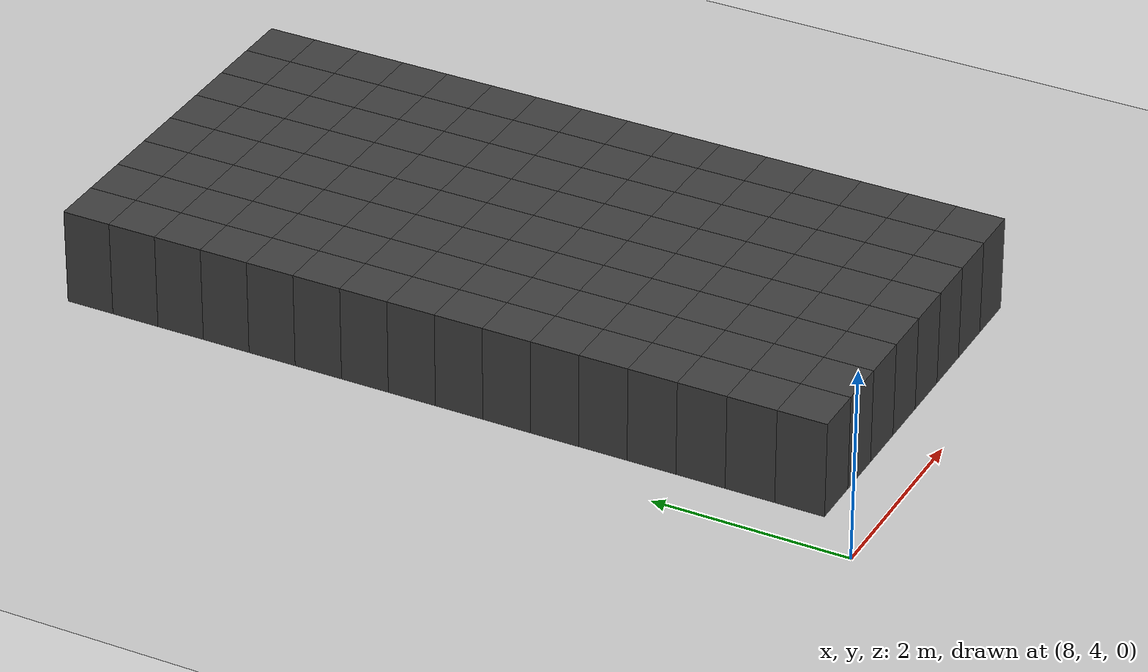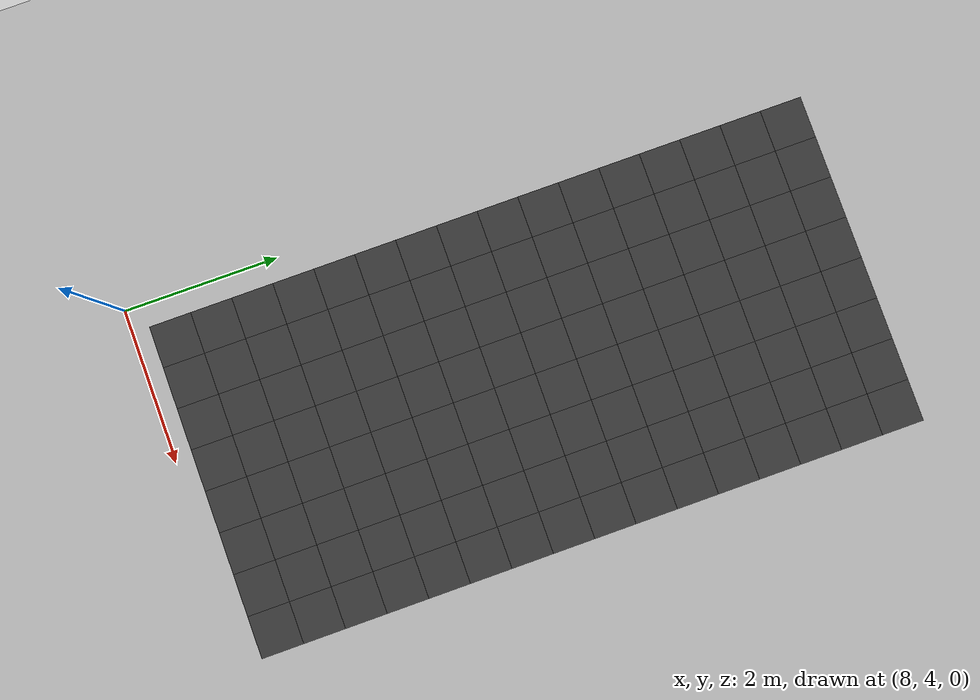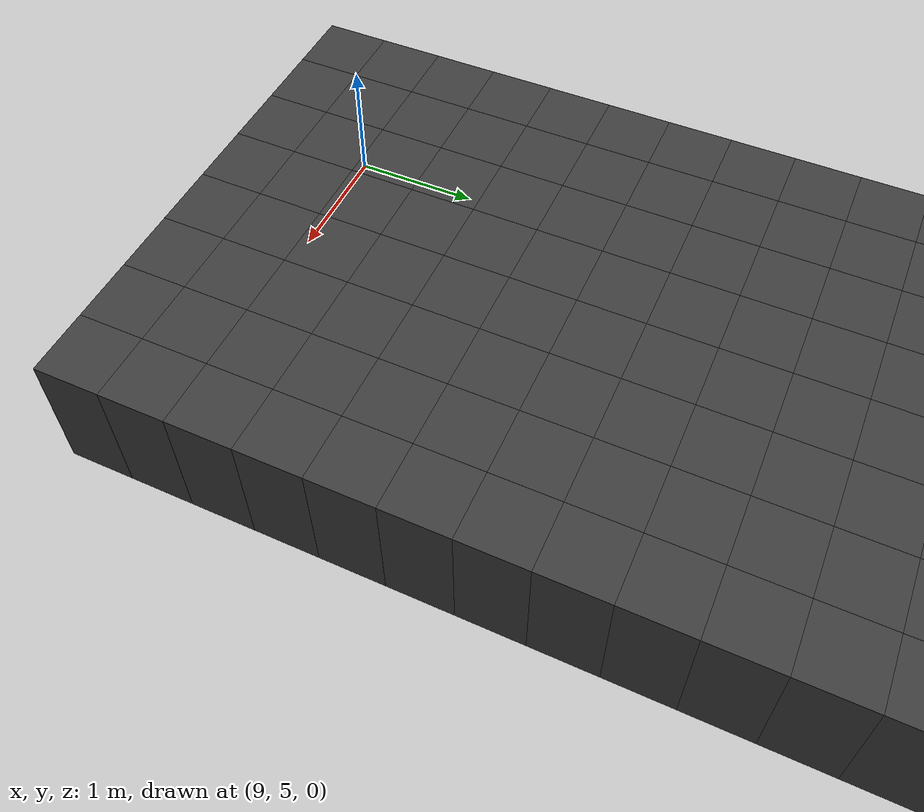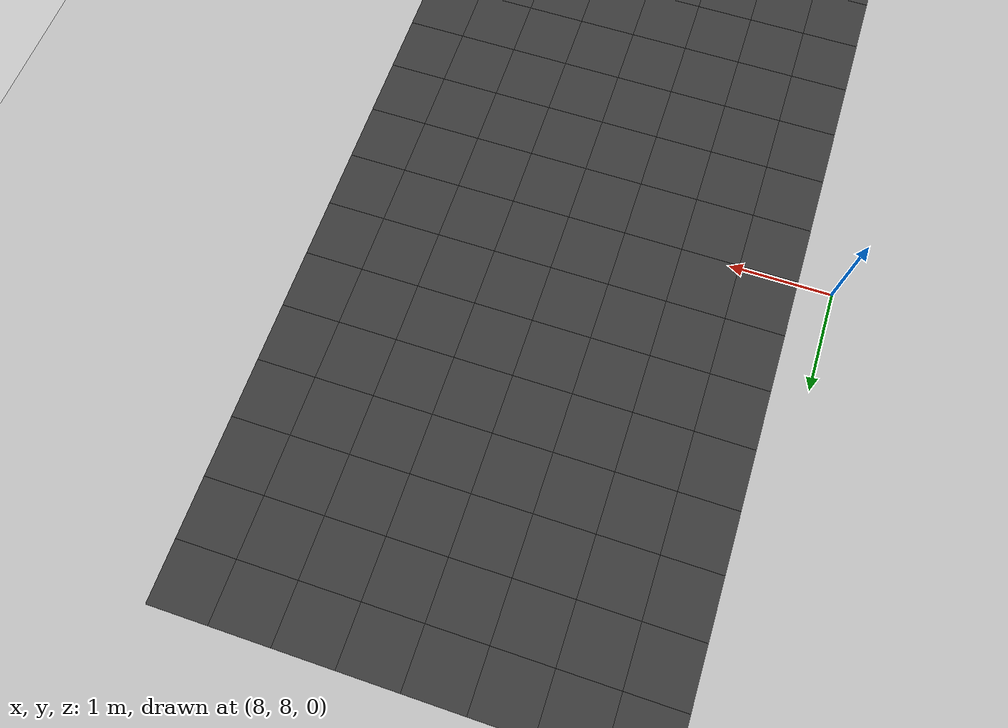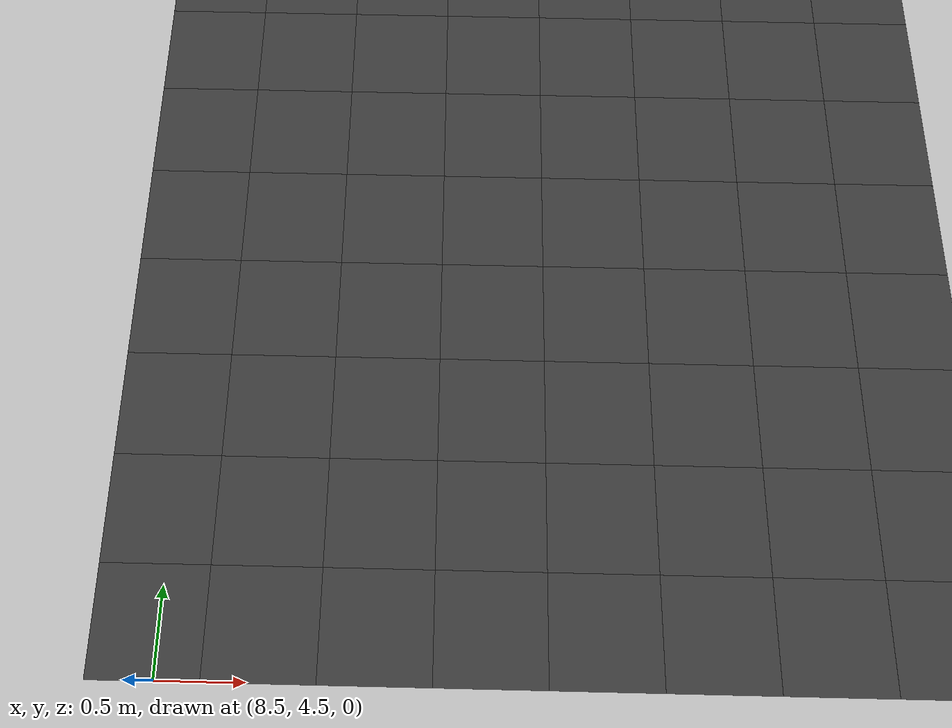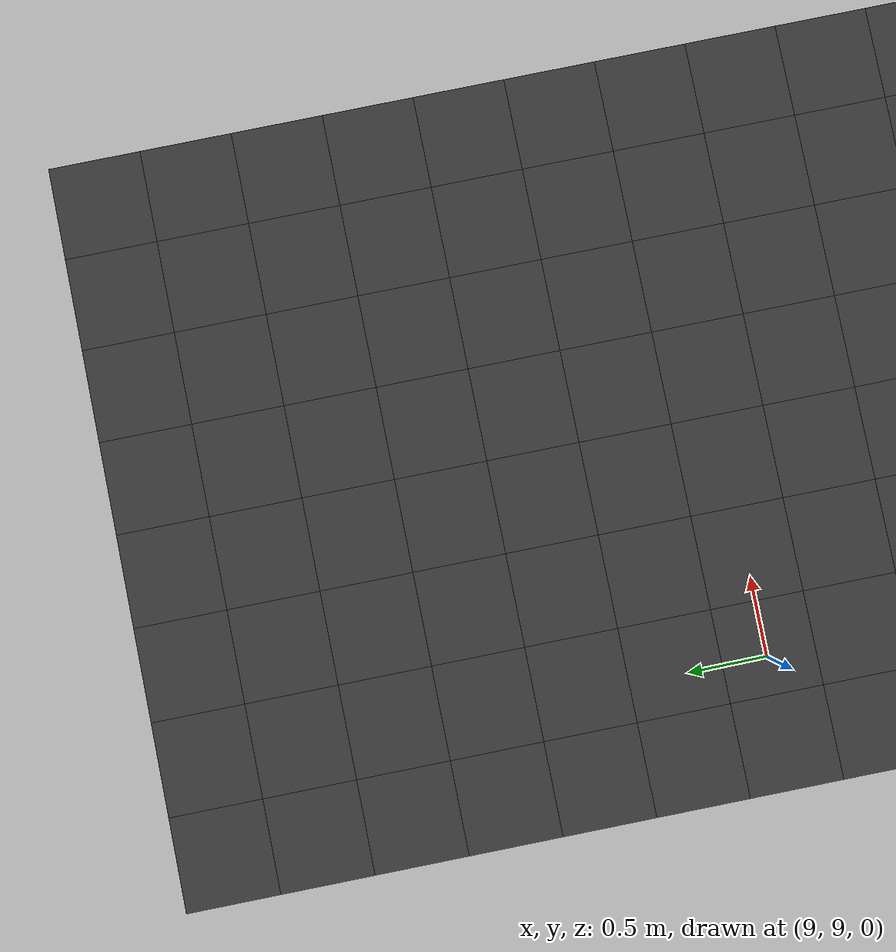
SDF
<sdf version="1.7">
 <world name="map_11515">
  <model name="ground_plane">
   <static>true</static>
   <link name="link">
    <collision name="collision">
     <geometry><plane><normal>0 0 1</normal><size>200 200</size></plane></geometry>
    </collision>
    <visual name="visual">
     <geometry><plane><normal>0 0 1</normal><size>200 200</size></plane></geometry>
     <material><ambient>0.8 0.8 0.8 1</ambient><diffuse>0.8 0.8 0.8 1</diffuse></material>
    </visual>
   </link>
  </model>
  <model name="maze_environment">
   <static>true</static>
   <link name="wall_42">
    <pose>8.750 12.250 0.500 0 0 0</pose>
    <collision name="col"><geometry><box><size>0.5 0.5 1.0</size></box></geometry></collision>
    <visual name="vis">
     <geometry><box><size>0.5 0.5 1.0</size></box></geometry>
     <material><ambient>0.15 0.15 0.15 1</ambient><diffuse>0.25 0.25 0.25 1</diffuse></material>
    </visual>
   </link>
   <link name="wall_43">
    <pose>9.250 12.250 0.500 0 0 0</pose>
    <collision name="col"><geometry><box><size>0.5 0.5 1.0</size></box></geometry></collision>
    <visual name="vis">
     <geometry><box><size>0.5 0.5 1.0</size></box></geometry>
     <material><ambient>0.15 0.15 0.15 1</ambient><diffuse>0.25 0.25 0.25 1</diffuse></material>
    </visual>
   </link>
   <link name="wall_44">
    <pose>9.750 12.250 0.500 0 0 0</pose>
    <collision name="col"><geometry><box><size>0.5 0.5 1.0</size></box></geometry></collision>
    <visual name="vis">
     <geometry><box><size>0.5 0.5 1.0</size></box></geometry>
     <material><ambient>0.15 0.15 0.15 1</ambient><diffuse>0.25 0.25 0.25 1</diffuse></material>
    </visual>
   </link>
   <link name="wall_45">
    <pose>10.250 12.250 0.500 0 0 0</pose>
    <collision name="col"><geometry><box><size>0.5 0.5 1.0</size></box></geometry></collision>
    <visual name="vis">
     <geometry><box><size>0.5 0.5 1.0</size></box></geometry>
     <material><ambient>0.15 0.15 0.15 1</ambient><diffuse>0.25 0.25 0.25 1</diffuse></material>
    </visual>
   </link>
   <link name="wall_46">
    <pose>10.750 12.250 0.500 0 0 0</pose>
    <collision name="col"><geometry><box><size>0.5 0.5 1.0</size></box></geometry></collision>
    <visual name="vis">
     <geometry><box><size>0.5 0.5 1.0</size></box></geometry>
     <material><ambient>0.15 0.15 0.15 1</ambient><diffuse>0.25 0.25 0.25 1</diffuse></material>
    </visual>
   </link>
   <link name="wall_47">
    <pose>11.250 12.250 0.500 0 0 0</pose>
    <collision name="col"><geometry><box><size>0.5 0.5 1.0</size></box></geometry></collision>
    <visual name="vis">
     <geometry><box><size>0.5 0.5 1.0</size></box></geometry>
     <material><ambient>0.15 0.15 0.15 1</ambient><diffuse>0.25 0.25 0.25 1</diffuse></material>
    </visual>
   </link>
   <link name="wall_48">
    <pose>11.750 12.250 0.500 0 0 0</pose>
    <collision name="col"><geometry><box><size>0.5 0.5 1.0</size></box></geometry></collision>
    <visual name="vis">
     <geometry><box><size>0.5 0.5 1.0</size></box></geometry>
     <material><ambient>0.15 0.15 0.15 1</ambient><diffuse>0.25 0.25 0.25 1</diffuse></material>
    </visual>
   </link>
   <link name="wall_49">
    <pose>12.250 12.250 0.500 0 0 0</pose>
    <collision name="col"><geometry><box><size>0.5 0.5 1.0</size></box></geometry></collision>
    <visual name="vis">
     <geometry><box><size>0.5 0.5 1.0</size></box></geometry>
     <material><ambient>0.15 0.15 0.15 1</ambient><diffuse>0.25 0.25 0.25 1</diffuse></material>
    </visual>
   </link>
   <link name="wall_89">
    <pose>8.750 11.750 0.500 0 0 0</pose>
    <collision name="col"><geometry><box><size>0.5 0.5 1.0</size></box></geometry></collision>
    <visual name="vis">
     <geometry><box><size>0.5 0.5 1.0</size></box></geometry>
     <material><ambient>0.15 0.15 0.15 1</ambient><diffuse>0.25 0.25 0.25 1</diffuse></material>
    </visual>
   </link>
   <link name="wall_90">
    <pose>9.250 11.750 0.500 0 0 0</pose>
    <collision name="col"><geometry><box><size>0.5 0.5 1.0</size></box></geometry></collision>
    <visual name="vis">
     <geometry><box><size>0.5 0.5 1.0</size></box></geometry>
     <material><ambient>0.15 0.15 0.15 1</ambient><diffuse>0.25 0.25 0.25 1</diffuse></material>
    </visual>
   </link>
   <link name="wall_91">
    <pose>9.750 11.750 0.500 0 0 0</pose>
    <collision name="col"><geometry><box><size>0.5 0.5 1.0</size></box></geometry></collision>
    <visual name="vis">
     <geometry><box><size>0.5 0.5 1.0</size></box></geometry>
     <material><ambient>0.15 0.15 0.15 1</ambient><diffuse>0.25 0.25 0.25 1</diffuse></material>
    </visual>
   </link>
   <link name="wall_92">
    <pose>10.250 11.750 0.500 0 0 0</pose>
    <collision name="col"><geometry><box><size>0.5 0.5 1.0</size></box></geometry></collision>
    <visual name="vis">
     <geometry><box><size>0.5 0.5 1.0</size></box></geometry>
     <material><ambient>0.15 0.15 0.15 1</ambient><diffuse>0.25 0.25 0.25 1</diffuse></material>
    </visual>
   </link>
   <link name="wall_93">
    <pose>10.750 11.750 0.500 0 0 0</pose>
    <collision name="col"><geometry><box><size>0.5 0.5 1.0</size></box></geometry></collision>
    <visual name="vis">
     <geometry><box><size>0.5 0.5 1.0</size></box></geometry>
     <material><ambient>0.15 0.15 0.15 1</ambient><diffuse>0.25 0.25 0.25 1</diffuse></material>
    </visual>
   </link>
   <link name="wall_94">
    <pose>11.250 11.750 0.500 0 0 0</pose>
    <collision name="col"><geometry><box><size>0.5 0.5 1.0</size></box></geometry></collision>
    <visual name="vis">
     <geometry><box><size>0.5 0.5 1.0</size></box></geometry>
     <material><ambient>0.15 0.15 0.15 1</ambient><diffuse>0.25 0.25 0.25 1</diffuse></material>
    </visual>
   </link>
   <link name="wall_95">
    <pose>11.750 11.750 0.500 0 0 0</pose>
    <collision name="col"><geometry><box><size>0.5 0.5 1.0</size></box></geometry></collision>
    <visual name="vis">
     <geometry><box><size>0.5 0.5 1.0</size></box></geometry>
     <material><ambient>0.15 0.15 0.15 1</ambient><diffuse>0.25 0.25 0.25 1</diffuse></material>
    </visual>
   </link>
   <link name="wall_96">
    <pose>12.250 11.750 0.500 0 0 0</pose>
    <collision name="col"><geometry><box><size>0.5 0.5 1.0</size></box></geometry></collision>
    <visual name="vis">
     <geometry><box><size>0.5 0.5 1.0</size></box></geometry>
     <material><ambient>0.15 0.15 0.15 1</ambient><diffuse>0.25 0.25 0.25 1</diffuse></material>
    </visual>
   </link>
   <link name="wall_136">
    <pose>8.750 11.250 0.500 0 0 0</pose>
    <collision name="col"><geometry><box><size>0.5 0.5 1.0</size></box></geometry></collision>
    <visual name="vis">
     <geometry><box><size>0.5 0.5 1.0</size></box></geometry>
     <material><ambient>0.15 0.15 0.15 1</ambient><diffuse>0.25 0.25 0.25 1</diffuse></material>
    </visual>
   </link>
   <link name="wall_137">
    <pose>9.250 11.250 0.500 0 0 0</pose>
    <collision name="col"><geometry><box><size>0.5 0.5 1.0</size></box></geometry></collision>
    <visual name="vis">
     <geometry><box><size>0.5 0.5 1.0</size></box></geometry>
     <material><ambient>0.15 0.15 0.15 1</ambient><diffuse>0.25 0.25 0.25 1</diffuse></material>
    </visual>
   </link>
   <link name="wall_138">
    <pose>9.750 11.250 0.500 0 0 0</pose>
    <collision name="col"><geometry><box><size>0.5 0.5 1.0</size></box></geometry></collision>
    <visual name="vis">
     <geometry><box><size>0.5 0.5 1.0</size></box></geometry>
     <material><ambient>0.15 0.15 0.15 1</ambient><diffuse>0.25 0.25 0.25 1</diffuse></material>
    </visual>
   </link>
   <link name="wall_139">
    <pose>10.250 11.250 0.500 0 0 0</pose>
    <collision name="col"><geometry><box><size>0.5 0.5 1.0</size></box></geometry></collision>
    <visual name="vis">
     <geometry><box><size>0.5 0.5 1.0</size></box></geometry>
     <material><ambient>0.15 0.15 0.15 1</ambient><diffuse>0.25 0.25 0.25 1</diffuse></material>
    </visual>
   </link>
   <link name="wall_140">
    <pose>10.750 11.250 0.500 0 0 0</pose>
    <collision name="col"><geometry><box><size>0.5 0.5 1.0</size></box></geometry></collision>
    <visual name="vis">
     <geometry><box><size>0.5 0.5 1.0</size></box></geometry>
     <material><ambient>0.15 0.15 0.15 1</ambient><diffuse>0.25 0.25 0.25 1</diffuse></material>
    </visual>
   </link>
   <link name="wall_141">
    <pose>11.250 11.250 0.500 0 0 0</pose>
    <collision name="col"><geometry><box><size>0.5 0.5 1.0</size></box></geometry></collision>
    <visual name="vis">
     <geometry><box><size>0.5 0.5 1.0</size></box></geometry>
     <material><ambient>0.15 0.15 0.15 1</ambient><diffuse>0.25 0.25 0.25 1</diffuse></material>
    </visual>
   </link>
   <link name="wall_142">
    <pose>11.750 11.250 0.500 0 0 0</pose>
    <collision name="col"><geometry><box><size>0.5 0.5 1.0</size></box></geometry></collision>
    <visual name="vis">
     <geometry><box><size>0.5 0.5 1.0</size></box></geometry>
     <material><ambient>0.15 0.15 0.15 1</ambient><diffuse>0.25 0.25 0.25 1</diffuse></material>
    </visual>
   </link>
   <link name="wall_143">
    <pose>12.250 11.250 0.500 0 0 0</pose>
    <collision name="col"><geometry><box><size>0.5 0.5 1.0</size></box></geometry></collision>
    <visual name="vis">
     <geometry><box><size>0.5 0.5 1.0</size></box></geometry>
     <material><ambient>0.15 0.15 0.15 1</ambient><diffuse>0.25 0.25 0.25 1</diffuse></material>
    </visual>
   </link>
   <link name="wall_183">
    <pose>8.750 10.750 0.500 0 0 0</pose>
    <collision name="col"><geometry><box><size>0.5 0.5 1.0</size></box></geometry></collision>
    <visual name="vis">
     <geometry><box><size>0.5 0.5 1.0</size></box></geometry>
     <material><ambient>0.15 0.15 0.15 1</ambient><diffuse>0.25 0.25 0.25 1</diffuse></material>
    </visual>
   </link>
   <link name="wall_184">
    <pose>9.250 10.750 0.500 0 0 0</pose>
    <collision name="col"><geometry><box><size>0.5 0.5 1.0</size></box></geometry></collision>
    <visual name="vis">
     <geometry><box><size>0.5 0.5 1.0</size></box></geometry>
     <material><ambient>0.15 0.15 0.15 1</ambient><diffuse>0.25 0.25 0.25 1</diffuse></material>
    </visual>
   </link>
   <link name="wall_185">
    <pose>9.750 10.750 0.500 0 0 0</pose>
    <collision name="col"><geometry><box><size>0.5 0.5 1.0</size></box></geometry></collision>
    <visual name="vis">
     <geometry><box><size>0.5 0.5 1.0</size></box></geometry>
     <material><ambient>0.15 0.15 0.15 1</ambient><diffuse>0.25 0.25 0.25 1</diffuse></material>
    </visual>
   </link>
   <link name="wall_186">
    <pose>10.250 10.750 0.500 0 0 0</pose>
    <collision name="col"><geometry><box><size>0.5 0.5 1.0</size></box></geometry></collision>
    <visual name="vis">
     <geometry><box><size>0.5 0.5 1.0</size></box></geometry>
     <material><ambient>0.15 0.15 0.15 1</ambient><diffuse>0.25 0.25 0.25 1</diffuse></material>
    </visual>
   </link>
   <link name="wall_187">
    <pose>10.750 10.750 0.500 0 0 0</pose>
    <collision name="col"><geometry><box><size>0.5 0.5 1.0</size></box></geometry></collision>
    <visual name="vis">
     <geometry><box><size>0.5 0.5 1.0</size></box></geometry>
     <material><ambient>0.15 0.15 0.15 1</ambient><diffuse>0.25 0.25 0.25 1</diffuse></material>
    </visual>
   </link>
   <link name="wall_188">
    <pose>11.250 10.750 0.500 0 0 0</pose>
    <collision name="col"><geometry><box><size>0.5 0.5 1.0</size></box></geometry></collision>
    <visual name="vis">
     <geometry><box><size>0.5 0.5 1.0</size></box></geometry>
     <material><ambient>0.15 0.15 0.15 1</ambient><diffuse>0.25 0.25 0.25 1</diffuse></material>
    </visual>
   </link>
   <link name="wall_189">
    <pose>11.750 10.750 0.500 0 0 0</pose>
    <collision name="col"><geometry><box><size>0.5 0.5 1.0</size></box></geometry></collision>
    <visual name="vis">
     <geometry><box><size>0.5 0.5 1.0</size></box></geometry>
     <material><ambient>0.15 0.15 0.15 1</ambient><diffuse>0.25 0.25 0.25 1</diffuse></material>
    </visual>
   </link>
   <link name="wall_190">
    <pose>12.250 10.750 0.500 0 0 0</pose>
    <collision name="col"><geometry><box><size>0.5 0.5 1.0</size></box></geometry></collision>
    <visual name="vis">
     <geometry><box><size>0.5 0.5 1.0</size></box></geometry>
     <material><ambient>0.15 0.15 0.15 1</ambient><diffuse>0.25 0.25 0.25 1</diffuse></material>
    </visual>
   </link>
   <link name="wall_232">
    <pose>8.750 10.250 0.500 0 0 0</pose>
    <collision name="col"><geometry><box><size>0.5 0.5 1.0</size></box></geometry></collision>
    <visual name="vis">
     <geometry><box><size>0.5 0.5 1.0</size></box></geometry>
     <material><ambient>0.15 0.15 0.15 1</ambient><diffuse>0.25 0.25 0.25 1</diffuse></material>
    </visual>
   </link>
   <link name="wall_233">
    <pose>9.250 10.250 0.500 0 0 0</pose>
    <collision name="col"><geometry><box><size>0.5 0.5 1.0</size></box></geometry></collision>
    <visual name="vis">
     <geometry><box><size>0.5 0.5 1.0</size></box></geometry>
     <material><ambient>0.15 0.15 0.15 1</ambient><diffuse>0.25 0.25 0.25 1</diffuse></material>
    </visual>
   </link>
   <link name="wall_234">
    <pose>9.750 10.250 0.500 0 0 0</pose>
    <collision name="col"><geometry><box><size>0.5 0.5 1.0</size></box></geometry></collision>
    <visual name="vis">
     <geometry><box><size>0.5 0.5 1.0</size></box></geometry>
     <material><ambient>0.15 0.15 0.15 1</ambient><diffuse>0.25 0.25 0.25 1</diffuse></material>
    </visual>
   </link>
   <link name="wall_235">
    <pose>10.250 10.250 0.500 0 0 0</pose>
    <collision name="col"><geometry><box><size>0.5 0.5 1.0</size></box></geometry></collision>
    <visual name="vis">
     <geometry><box><size>0.5 0.5 1.0</size></box></geometry>
     <material><ambient>0.15 0.15 0.15 1</ambient><diffuse>0.25 0.25 0.25 1</diffuse></material>
    </visual>
   </link>
   <link name="wall_236">
    <pose>10.750 10.250 0.500 0 0 0</pose>
    <collision name="col"><geometry><box><size>0.5 0.5 1.0</size></box></geometry></collision>
    <visual name="vis">
     <geometry><box><size>0.5 0.5 1.0</size></box></geometry>
     <material><ambient>0.15 0.15 0.15 1</ambient><diffuse>0.25 0.25 0.25 1</diffuse></material>
    </visual>
   </link>
   <link name="wall_237">
    <pose>11.250 10.250 0.500 0 0 0</pose>
    <collision name="col"><geometry><box><size>0.5 0.5 1.0</size></box></geometry></collision>
    <visual name="vis">
     <geometry><box><size>0.5 0.5 1.0</size></box></geometry>
     <material><ambient>0.15 0.15 0.15 1</ambient><diffuse>0.25 0.25 0.25 1</diffuse></material>
    </visual>
   </link>
   <link name="wall_238">
    <pose>11.750 10.250 0.500 0 0 0</pose>
    <collision name="col"><geometry><box><size>0.5 0.5 1.0</size></box></geometry></collision>
    <visual name="vis">
     <geometry><box><size>0.5 0.5 1.0</size></box></geometry>
     <material><ambient>0.15 0.15 0.15 1</ambient><diffuse>0.25 0.25 0.25 1</diffuse></material>
    </visual>
   </link>
   <link name="wall_239">
    <pose>12.250 10.250 0.500 0 0 0</pose>
    <collision name="col"><geometry><box><size>0.5 0.5 1.0</size></box></geometry></collision>
    <visual name="vis">
     <geometry><box><size>0.5 0.5 1.0</size></box></geometry>
     <material><ambient>0.15 0.15 0.15 1</ambient><diffuse>0.25 0.25 0.25 1</diffuse></material>
    </visual>
   </link>
   <link name="wall_275">
    <pose>8.750 9.750 0.500 0 0 0</pose>
    <collision name="col"><geometry><box><size>0.5 0.5 1.0</size></box></geometry></collision>
    <visual name="vis">
     <geometry><box><size>0.5 0.5 1.0</size></box></geometry>
     <material><ambient>0.15 0.15 0.15 1</ambient><diffuse>0.25 0.25 0.25 1</diffuse></material>
    </visual>
   </link>
   <link name="wall_276">
    <pose>9.250 9.750 0.500 0 0 0</pose>
    <collision name="col"><geometry><box><size>0.5 0.5 1.0</size></box></geometry></collision>
    <visual name="vis">
     <geometry><box><size>0.5 0.5 1.0</size></box></geometry>
     <material><ambient>0.15 0.15 0.15 1</ambient><diffuse>0.25 0.25 0.25 1</diffuse></material>
    </visual>
   </link>
   <link name="wall_277">
    <pose>9.750 9.750 0.500 0 0 0</pose>
    <collision name="col"><geometry><box><size>0.5 0.5 1.0</size></box></geometry></collision>
    <visual name="vis">
     <geometry><box><size>0.5 0.5 1.0</size></box></geometry>
     <material><ambient>0.15 0.15 0.15 1</ambient><diffuse>0.25 0.25 0.25 1</diffuse></material>
    </visual>
   </link>
   <link name="wall_278">
    <pose>10.250 9.750 0.500 0 0 0</pose>
    <collision name="col"><geometry><box><size>0.5 0.5 1.0</size></box></geometry></collision>
    <visual name="vis">
     <geometry><box><size>0.5 0.5 1.0</size></box></geometry>
     <material><ambient>0.15 0.15 0.15 1</ambient><diffuse>0.25 0.25 0.25 1</diffuse></material>
    </visual>
   </link>
   <link name="wall_279">
    <pose>10.750 9.750 0.500 0 0 0</pose>
    <collision name="col"><geometry><box><size>0.5 0.5 1.0</size></box></geometry></collision>
    <visual name="vis">
     <geometry><box><size>0.5 0.5 1.0</size></box></geometry>
     <material><ambient>0.15 0.15 0.15 1</ambient><diffuse>0.25 0.25 0.25 1</diffuse></material>
    </visual>
   </link>
   <link name="wall_280">
    <pose>11.250 9.750 0.500 0 0 0</pose>
    <collision name="col"><geometry><box><size>0.5 0.5 1.0</size></box></geometry></collision>
    <visual name="vis">
     <geometry><box><size>0.5 0.5 1.0</size></box></geometry>
     <material><ambient>0.15 0.15 0.15 1</ambient><diffuse>0.25 0.25 0.25 1</diffuse></material>
    </visual>
   </link>
   <link name="wall_281">
    <pose>11.750 9.750 0.500 0 0 0</pose>
    <collision name="col"><geometry><box><size>0.5 0.5 1.0</size></box></geometry></collision>
    <visual name="vis">
     <geometry><box><size>0.5 0.5 1.0</size></box></geometry>
     <material><ambient>0.15 0.15 0.15 1</ambient><diffuse>0.25 0.25 0.25 1</diffuse></material>
    </visual>
   </link>
   <link name="wall_282">
    <pose>12.250 9.750 0.500 0 0 0</pose>
    <collision name="col"><geometry><box><size>0.5 0.5 1.0</size></box></geometry></collision>
    <visual name="vis">
     <geometry><box><size>0.5 0.5 1.0</size></box></geometry>
     <material><ambient>0.15 0.15 0.15 1</ambient><diffuse>0.25 0.25 0.25 1</diffuse></material>
    </visual>
   </link>
   <link name="wall_318">
    <pose>8.750 9.250 0.500 0 0 0</pose>
    <collision name="col"><geometry><box><size>0.5 0.5 1.0</size></box></geometry></collision>
    <visual name="vis">
     <geometry><box><size>0.5 0.5 1.0</size></box></geometry>
     <material><ambient>0.15 0.15 0.15 1</ambient><diffuse>0.25 0.25 0.25 1</diffuse></material>
    </visual>
   </link>
   <link name="wall_319">
    <pose>9.250 9.250 0.500 0 0 0</pose>
    <collision name="col"><geometry><box><size>0.5 0.5 1.0</size></box></geometry></collision>
    <visual name="vis">
     <geometry><box><size>0.5 0.5 1.0</size></box></geometry>
     <material><ambient>0.15 0.15 0.15 1</ambient><diffuse>0.25 0.25 0.25 1</diffuse></material>
    </visual>
   </link>
   <link name="wall_320">
    <pose>9.750 9.250 0.500 0 0 0</pose>
    <collision name="col"><geometry><box><size>0.5 0.5 1.0</size></box></geometry></collision>
    <visual name="vis">
     <geometry><box><size>0.5 0.5 1.0</size></box></geometry>
     <material><ambient>0.15 0.15 0.15 1</ambient><diffuse>0.25 0.25 0.25 1</diffuse></material>
    </visual>
   </link>
   <link name="wall_321">
    <pose>10.250 9.250 0.500 0 0 0</pose>
    <collision name="col"><geometry><box><size>0.5 0.5 1.0</size></box></geometry></collision>
    <visual name="vis">
     <geometry><box><size>0.5 0.5 1.0</size></box></geometry>
     <material><ambient>0.15 0.15 0.15 1</ambient><diffuse>0.25 0.25 0.25 1</diffuse></material>
    </visual>
   </link>
   <link name="wall_322">
    <pose>10.750 9.250 0.500 0 0 0</pose>
    <collision name="col"><geometry><box><size>0.5 0.5 1.0</size></box></geometry></collision>
    <visual name="vis">
     <geometry><box><size>0.5 0.5 1.0</size></box></geometry>
     <material><ambient>0.15 0.15 0.15 1</ambient><diffuse>0.25 0.25 0.25 1</diffuse></material>
    </visual>
   </link>
   <link name="wall_323">
    <pose>11.250 9.250 0.500 0 0 0</pose>
    <collision name="col"><geometry><box><size>0.5 0.5 1.0</size></box></geometry></collision>
    <visual name="vis">
     <geometry><box><size>0.5 0.5 1.0</size></box></geometry>
     <material><ambient>0.15 0.15 0.15 1</ambient><diffuse>0.25 0.25 0.25 1</diffuse></material>
    </visual>
   </link>
   <link name="wall_324">
    <pose>11.750 9.250 0.500 0 0 0</pose>
    <collision name="col"><geometry><box><size>0.5 0.5 1.0</size></box></geometry></collision>
    <visual name="vis">
     <geometry><box><size>0.5 0.5 1.0</size></box></geometry>
     <material><ambient>0.15 0.15 0.15 1</ambient><diffuse>0.25 0.25 0.25 1</diffuse></material>
    </visual>
   </link>
   <link name="wall_325">
    <pose>12.250 9.250 0.500 0 0 0</pose>
    <collision name="col"><geometry><box><size>0.5 0.5 1.0</size></box></geometry></collision>
    <visual name="vis">
     <geometry><box><size>0.5 0.5 1.0</size></box></geometry>
     <material><ambient>0.15 0.15 0.15 1</ambient><diffuse>0.25 0.25 0.25 1</diffuse></material>
    </visual>
   </link>
   <link name="wall_346">
    <pose>8.750 8.750 0.500 0 0 0</pose>
    <collision name="col"><geometry><box><size>0.5 0.5 1.0</size></box></geometry></collision>
    <visual name="vis">
     <geometry><box><size>0.5 0.5 1.0</size></box></geometry>
     <material><ambient>0.15 0.15 0.15 1</ambient><diffuse>0.25 0.25 0.25 1</diffuse></material>
    </visual>
   </link>
   <link name="wall_347">
    <pose>9.250 8.750 0.500 0 0 0</pose>
    <collision name="col"><geometry><box><size>0.5 0.5 1.0</size></box></geometry></collision>
    <visual name="vis">
     <geometry><box><size>0.5 0.5 1.0</size></box></geometry>
     <material><ambient>0.15 0.15 0.15 1</ambient><diffuse>0.25 0.25 0.25 1</diffuse></material>
    </visual>
   </link>
   <link name="wall_348">
    <pose>9.750 8.750 0.500 0 0 0</pose>
    <collision name="col"><geometry><box><size>0.5 0.5 1.0</size></box></geometry></collision>
    <visual name="vis">
     <geometry><box><size>0.5 0.5 1.0</size></box></geometry>
     <material><ambient>0.15 0.15 0.15 1</ambient><diffuse>0.25 0.25 0.25 1</diffuse></material>
    </visual>
   </link>
   <link name="wall_349">
    <pose>10.250 8.750 0.500 0 0 0</pose>
    <collision name="col"><geometry><box><size>0.5 0.5 1.0</size></box></geometry></collision>
    <visual name="vis">
     <geometry><box><size>0.5 0.5 1.0</size></box></geometry>
     <material><ambient>0.15 0.15 0.15 1</ambient><diffuse>0.25 0.25 0.25 1</diffuse></material>
    </visual>
   </link>
   <link name="wall_350">
    <pose>10.750 8.750 0.500 0 0 0</pose>
    <collision name="col"><geometry><box><size>0.5 0.5 1.0</size></box></geometry></collision>
    <visual name="vis">
     <geometry><box><size>0.5 0.5 1.0</size></box></geometry>
     <material><ambient>0.15 0.15 0.15 1</ambient><diffuse>0.25 0.25 0.25 1</diffuse></material>
    </visual>
   </link>
   <link name="wall_351">
    <pose>11.250 8.750 0.500 0 0 0</pose>
    <collision name="col"><geometry><box><size>0.5 0.5 1.0</size></box></geometry></collision>
    <visual name="vis">
     <geometry><box><size>0.5 0.5 1.0</size></box></geometry>
     <material><ambient>0.15 0.15 0.15 1</ambient><diffuse>0.25 0.25 0.25 1</diffuse></material>
    </visual>
   </link>
   <link name="wall_352">
    <pose>11.750 8.750 0.500 0 0 0</pose>
    <collision name="col"><geometry><box><size>0.5 0.5 1.0</size></box></geometry></collision>
    <visual name="vis">
     <geometry><box><size>0.5 0.5 1.0</size></box></geometry>
     <material><ambient>0.15 0.15 0.15 1</ambient><diffuse>0.25 0.25 0.25 1</diffuse></material>
    </visual>
   </link>
   <link name="wall_353">
    <pose>12.250 8.750 0.500 0 0 0</pose>
    <collision name="col"><geometry><box><size>0.5 0.5 1.0</size></box></geometry></collision>
    <visual name="vis">
     <geometry><box><size>0.5 0.5 1.0</size></box></geometry>
     <material><ambient>0.15 0.15 0.15 1</ambient><diffuse>0.25 0.25 0.25 1</diffuse></material>
    </visual>
   </link>
   <link name="wall_386">
    <pose>8.750 8.250 0.500 0 0 0</pose>
    <collision name="col"><geometry><box><size>0.5 0.5 1.0</size></box></geometry></collision>
    <visual name="vis">
     <geometry><box><size>0.5 0.5 1.0</size></box></geometry>
     <material><ambient>0.15 0.15 0.15 1</ambient><diffuse>0.25 0.25 0.25 1</diffuse></material>
    </visual>
   </link>
   <link name="wall_387">
    <pose>9.250 8.250 0.500 0 0 0</pose>
    <collision name="col"><geometry><box><size>0.5 0.5 1.0</size></box></geometry></collision>
    <visual name="vis">
     <geometry><box><size>0.5 0.5 1.0</size></box></geometry>
     <material><ambient>0.15 0.15 0.15 1</ambient><diffuse>0.25 0.25 0.25 1</diffuse></material>
    </visual>
   </link>
   <link name="wall_388">
    <pose>9.750 8.250 0.500 0 0 0</pose>
    <collision name="col"><geometry><box><size>0.5 0.5 1.0</size></box></geometry></collision>
    <visual name="vis">
     <geometry><box><size>0.5 0.5 1.0</size></box></geometry>
     <material><ambient>0.15 0.15 0.15 1</ambient><diffuse>0.25 0.25 0.25 1</diffuse></material>
    </visual>
   </link>
   <link name="wall_389">
    <pose>10.250 8.250 0.500 0 0 0</pose>
    <collision name="col"><geometry><box><size>0.5 0.5 1.0</size></box></geometry></collision>
    <visual name="vis">
     <geometry><box><size>0.5 0.5 1.0</size></box></geometry>
     <material><ambient>0.15 0.15 0.15 1</ambient><diffuse>0.25 0.25 0.25 1</diffuse></material>
    </visual>
   </link>
   <link name="wall_390">
    <pose>10.750 8.250 0.500 0 0 0</pose>
    <collision name="col"><geometry><box><size>0.5 0.5 1.0</size></box></geometry></collision>
    <visual name="vis">
     <geometry><box><size>0.5 0.5 1.0</size></box></geometry>
     <material><ambient>0.15 0.15 0.15 1</ambient><diffuse>0.25 0.25 0.25 1</diffuse></material>
    </visual>
   </link>
   <link name="wall_391">
    <pose>11.250 8.250 0.500 0 0 0</pose>
    <collision name="col"><geometry><box><size>0.5 0.5 1.0</size></box></geometry></collision>
    <visual name="vis">
     <geometry><box><size>0.5 0.5 1.0</size></box></geometry>
     <material><ambient>0.15 0.15 0.15 1</ambient><diffuse>0.25 0.25 0.25 1</diffuse></material>
    </visual>
   </link>
   <link name="wall_392">
    <pose>11.750 8.250 0.500 0 0 0</pose>
    <collision name="col"><geometry><box><size>0.5 0.5 1.0</size></box></geometry></collision>
    <visual name="vis">
     <geometry><box><size>0.5 0.5 1.0</size></box></geometry>
     <material><ambient>0.15 0.15 0.15 1</ambient><diffuse>0.25 0.25 0.25 1</diffuse></material>
    </visual>
   </link>
   <link name="wall_393">
    <pose>12.250 8.250 0.500 0 0 0</pose>
    <collision name="col"><geometry><box><size>0.5 0.5 1.0</size></box></geometry></collision>
    <visual name="vis">
     <geometry><box><size>0.5 0.5 1.0</size></box></geometry>
     <material><ambient>0.15 0.15 0.15 1</ambient><diffuse>0.25 0.25 0.25 1</diffuse></material>
    </visual>
   </link>
   <link name="wall_424">
    <pose>8.750 7.750 0.500 0 0 0</pose>
    <collision name="col"><geometry><box><size>0.5 0.5 1.0</size></box></geometry></collision>
    <visual name="vis">
     <geometry><box><size>0.5 0.5 1.0</size></box></geometry>
     <material><ambient>0.15 0.15 0.15 1</ambient><diffuse>0.25 0.25 0.25 1</diffuse></material>
    </visual>
   </link>
   <link name="wall_425">
    <pose>9.250 7.750 0.500 0 0 0</pose>
    <collision name="col"><geometry><box><size>0.5 0.5 1.0</size></box></geometry></collision>
    <visual name="vis">
     <geometry><box><size>0.5 0.5 1.0</size></box></geometry>
     <material><ambient>0.15 0.15 0.15 1</ambient><diffuse>0.25 0.25 0.25 1</diffuse></material>
    </visual>
   </link>
   <link name="wall_426">
    <pose>9.750 7.750 0.500 0 0 0</pose>
    <collision name="col"><geometry><box><size>0.5 0.5 1.0</size></box></geometry></collision>
    <visual name="vis">
     <geometry><box><size>0.5 0.5 1.0</size></box></geometry>
     <material><ambient>0.15 0.15 0.15 1</ambient><diffuse>0.25 0.25 0.25 1</diffuse></material>
    </visual>
   </link>
   <link name="wall_427">
    <pose>10.250 7.750 0.500 0 0 0</pose>
    <collision name="col"><geometry><box><size>0.5 0.5 1.0</size></box></geometry></collision>
    <visual name="vis">
     <geometry><box><size>0.5 0.5 1.0</size></box></geometry>
     <material><ambient>0.15 0.15 0.15 1</ambient><diffuse>0.25 0.25 0.25 1</diffuse></material>
    </visual>
   </link>
   <link name="wall_428">
    <pose>10.750 7.750 0.500 0 0 0</pose>
    <collision name="col"><geometry><box><size>0.5 0.5 1.0</size></box></geometry></collision>
    <visual name="vis">
     <geometry><box><size>0.5 0.5 1.0</size></box></geometry>
     <material><ambient>0.15 0.15 0.15 1</ambient><diffuse>0.25 0.25 0.25 1</diffuse></material>
    </visual>
   </link>
   <link name="wall_429">
    <pose>11.250 7.750 0.500 0 0 0</pose>
    <collision name="col"><geometry><box><size>0.5 0.5 1.0</size></box></geometry></collision>
    <visual name="vis">
     <geometry><box><size>0.5 0.5 1.0</size></box></geometry>
     <material><ambient>0.15 0.15 0.15 1</ambient><diffuse>0.25 0.25 0.25 1</diffuse></material>
    </visual>
   </link>
   <link name="wall_430">
    <pose>11.750 7.750 0.500 0 0 0</pose>
    <collision name="col"><geometry><box><size>0.5 0.5 1.0</size></box></geometry></collision>
    <visual name="vis">
     <geometry><box><size>0.5 0.5 1.0</size></box></geometry>
     <material><ambient>0.15 0.15 0.15 1</ambient><diffuse>0.25 0.25 0.25 1</diffuse></material>
    </visual>
   </link>
   <link name="wall_431">
    <pose>12.250 7.750 0.500 0 0 0</pose>
    <collision name="col"><geometry><box><size>0.5 0.5 1.0</size></box></geometry></collision>
    <visual name="vis">
     <geometry><box><size>0.5 0.5 1.0</size></box></geometry>
     <material><ambient>0.15 0.15 0.15 1</ambient><diffuse>0.25 0.25 0.25 1</diffuse></material>
    </visual>
   </link>
   <link name="wall_463">
    <pose>8.750 7.250 0.500 0 0 0</pose>
    <collision name="col"><geometry><box><size>0.5 0.5 1.0</size></box></geometry></collision>
    <visual name="vis">
     <geometry><box><size>0.5 0.5 1.0</size></box></geometry>
     <material><ambient>0.15 0.15 0.15 1</ambient><diffuse>0.25 0.25 0.25 1</diffuse></material>
    </visual>
   </link>
   <link name="wall_464">
    <pose>9.250 7.250 0.500 0 0 0</pose>
    <collision name="col"><geometry><box><size>0.5 0.5 1.0</size></box></geometry></collision>
    <visual name="vis">
     <geometry><box><size>0.5 0.5 1.0</size></box></geometry>
     <material><ambient>0.15 0.15 0.15 1</ambient><diffuse>0.25 0.25 0.25 1</diffuse></material>
    </visual>
   </link>
   <link name="wall_465">
    <pose>9.750 7.250 0.500 0 0 0</pose>
    <collision name="col"><geometry><box><size>0.5 0.5 1.0</size></box></geometry></collision>
    <visual name="vis">
     <geometry><box><size>0.5 0.5 1.0</size></box></geometry>
     <material><ambient>0.15 0.15 0.15 1</ambient><diffuse>0.25 0.25 0.25 1</diffuse></material>
    </visual>
   </link>
   <link name="wall_466">
    <pose>10.250 7.250 0.500 0 0 0</pose>
    <collision name="col"><geometry><box><size>0.5 0.5 1.0</size></box></geometry></collision>
    <visual name="vis">
     <geometry><box><size>0.5 0.5 1.0</size></box></geometry>
     <material><ambient>0.15 0.15 0.15 1</ambient><diffuse>0.25 0.25 0.25 1</diffuse></material>
    </visual>
   </link>
   <link name="wall_467">
    <pose>10.750 7.250 0.500 0 0 0</pose>
    <collision name="col"><geometry><box><size>0.5 0.5 1.0</size></box></geometry></collision>
    <visual name="vis">
     <geometry><box><size>0.5 0.5 1.0</size></box></geometry>
     <material><ambient>0.15 0.15 0.15 1</ambient><diffuse>0.25 0.25 0.25 1</diffuse></material>
    </visual>
   </link>
   <link name="wall_468">
    <pose>11.250 7.250 0.500 0 0 0</pose>
    <collision name="col"><geometry><box><size>0.5 0.5 1.0</size></box></geometry></collision>
    <visual name="vis">
     <geometry><box><size>0.5 0.5 1.0</size></box></geometry>
     <material><ambient>0.15 0.15 0.15 1</ambient><diffuse>0.25 0.25 0.25 1</diffuse></material>
    </visual>
   </link>
   <link name="wall_469">
    <pose>11.750 7.250 0.500 0 0 0</pose>
    <collision name="col"><geometry><box><size>0.5 0.5 1.0</size></box></geometry></collision>
    <visual name="vis">
     <geometry><box><size>0.5 0.5 1.0</size></box></geometry>
     <material><ambient>0.15 0.15 0.15 1</ambient><diffuse>0.25 0.25 0.25 1</diffuse></material>
    </visual>
   </link>
   <link name="wall_470">
    <pose>12.250 7.250 0.500 0 0 0</pose>
    <collision name="col"><geometry><box><size>0.5 0.5 1.0</size></box></geometry></collision>
    <visual name="vis">
     <geometry><box><size>0.5 0.5 1.0</size></box></geometry>
     <material><ambient>0.15 0.15 0.15 1</ambient><diffuse>0.25 0.25 0.25 1</diffuse></material>
    </visual>
   </link>
   <link name="wall_506">
    <pose>8.750 6.750 0.500 0 0 0</pose>
    <collision name="col"><geometry><box><size>0.5 0.5 1.0</size></box></geometry></collision>
    <visual name="vis">
     <geometry><box><size>0.5 0.5 1.0</size></box></geometry>
     <material><ambient>0.15 0.15 0.15 1</ambient><diffuse>0.25 0.25 0.25 1</diffuse></material>
    </visual>
   </link>
   <link name="wall_507">
    <pose>9.250 6.750 0.500 0 0 0</pose>
    <collision name="col"><geometry><box><size>0.5 0.5 1.0</size></box></geometry></collision>
    <visual name="vis">
     <geometry><box><size>0.5 0.5 1.0</size></box></geometry>
     <material><ambient>0.15 0.15 0.15 1</ambient><diffuse>0.25 0.25 0.25 1</diffuse></material>
    </visual>
   </link>
   <link name="wall_508">
    <pose>9.750 6.750 0.500 0 0 0</pose>
    <collision name="col"><geometry><box><size>0.5 0.5 1.0</size></box></geometry></collision>
    <visual name="vis">
     <geometry><box><size>0.5 0.5 1.0</size></box></geometry>
     <material><ambient>0.15 0.15 0.15 1</ambient><diffuse>0.25 0.25 0.25 1</diffuse></material>
    </visual>
   </link>
   <link name="wall_509">
    <pose>10.250 6.750 0.500 0 0 0</pose>
    <collision name="col"><geometry><box><size>0.5 0.5 1.0</size></box></geometry></collision>
    <visual name="vis">
     <geometry><box><size>0.5 0.5 1.0</size></box></geometry>
     <material><ambient>0.15 0.15 0.15 1</ambient><diffuse>0.25 0.25 0.25 1</diffuse></material>
    </visual>
   </link>
   <link name="wall_510">
    <pose>10.750 6.750 0.500 0 0 0</pose>
    <collision name="col"><geometry><box><size>0.5 0.5 1.0</size></box></geometry></collision>
    <visual name="vis">
     <geometry><box><size>0.5 0.5 1.0</size></box></geometry>
     <material><ambient>0.15 0.15 0.15 1</ambient><diffuse>0.25 0.25 0.25 1</diffuse></material>
    </visual>
   </link>
   <link name="wall_511">
    <pose>11.250 6.750 0.500 0 0 0</pose>
    <collision name="col"><geometry><box><size>0.5 0.5 1.0</size></box></geometry></collision>
    <visual name="vis">
     <geometry><box><size>0.5 0.5 1.0</size></box></geometry>
     <material><ambient>0.15 0.15 0.15 1</ambient><diffuse>0.25 0.25 0.25 1</diffuse></material>
    </visual>
   </link>
   <link name="wall_512">
    <pose>11.750 6.750 0.500 0 0 0</pose>
    <collision name="col"><geometry><box><size>0.5 0.5 1.0</size></box></geometry></collision>
    <visual name="vis">
     <geometry><box><size>0.5 0.5 1.0</size></box></geometry>
     <material><ambient>0.15 0.15 0.15 1</ambient><diffuse>0.25 0.25 0.25 1</diffuse></material>
    </visual>
   </link>
   <link name="wall_513">
    <pose>12.250 6.750 0.500 0 0 0</pose>
    <collision name="col"><geometry><box><size>0.5 0.5 1.0</size></box></geometry></collision>
    <visual name="vis">
     <geometry><box><size>0.5 0.5 1.0</size></box></geometry>
     <material><ambient>0.15 0.15 0.15 1</ambient><diffuse>0.25 0.25 0.25 1</diffuse></material>
    </visual>
   </link>
   <link name="wall_549">
    <pose>8.750 6.250 0.500 0 0 0</pose>
    <collision name="col"><geometry><box><size>0.5 0.5 1.0</size></box></geometry></collision>
    <visual name="vis">
     <geometry><box><size>0.5 0.5 1.0</size></box></geometry>
     <material><ambient>0.15 0.15 0.15 1</ambient><diffuse>0.25 0.25 0.25 1</diffuse></material>
    </visual>
   </link>
   <link name="wall_550">
    <pose>9.250 6.250 0.500 0 0 0</pose>
    <collision name="col"><geometry><box><size>0.5 0.5 1.0</size></box></geometry></collision>
    <visual name="vis">
     <geometry><box><size>0.5 0.5 1.0</size></box></geometry>
     <material><ambient>0.15 0.15 0.15 1</ambient><diffuse>0.25 0.25 0.25 1</diffuse></material>
    </visual>
   </link>
   <link name="wall_551">
    <pose>9.750 6.250 0.500 0 0 0</pose>
    <collision name="col"><geometry><box><size>0.5 0.5 1.0</size></box></geometry></collision>
    <visual name="vis">
     <geometry><box><size>0.5 0.5 1.0</size></box></geometry>
     <material><ambient>0.15 0.15 0.15 1</ambient><diffuse>0.25 0.25 0.25 1</diffuse></material>
    </visual>
   </link>
   <link name="wall_552">
    <pose>10.250 6.250 0.500 0 0 0</pose>
    <collision name="col"><geometry><box><size>0.5 0.5 1.0</size></box></geometry></collision>
    <visual name="vis">
     <geometry><box><size>0.5 0.5 1.0</size></box></geometry>
     <material><ambient>0.15 0.15 0.15 1</ambient><diffuse>0.25 0.25 0.25 1</diffuse></material>
    </visual>
   </link>
   <link name="wall_553">
    <pose>10.750 6.250 0.500 0 0 0</pose>
    <collision name="col"><geometry><box><size>0.5 0.5 1.0</size></box></geometry></collision>
    <visual name="vis">
     <geometry><box><size>0.5 0.5 1.0</size></box></geometry>
     <material><ambient>0.15 0.15 0.15 1</ambient><diffuse>0.25 0.25 0.25 1</diffuse></material>
    </visual>
   </link>
   <link name="wall_554">
    <pose>11.250 6.250 0.500 0 0 0</pose>
    <collision name="col"><geometry><box><size>0.5 0.5 1.0</size></box></geometry></collision>
    <visual name="vis">
     <geometry><box><size>0.5 0.5 1.0</size></box></geometry>
     <material><ambient>0.15 0.15 0.15 1</ambient><diffuse>0.25 0.25 0.25 1</diffuse></material>
    </visual>
   </link>
   <link name="wall_555">
    <pose>11.750 6.250 0.500 0 0 0</pose>
    <collision name="col"><geometry><box><size>0.5 0.5 1.0</size></box></geometry></collision>
    <visual name="vis">
     <geometry><box><size>0.5 0.5 1.0</size></box></geometry>
     <material><ambient>0.15 0.15 0.15 1</ambient><diffuse>0.25 0.25 0.25 1</diffuse></material>
    </visual>
   </link>
   <link name="wall_556">
    <pose>12.250 6.250 0.500 0 0 0</pose>
    <collision name="col"><geometry><box><size>0.5 0.5 1.0</size></box></geometry></collision>
    <visual name="vis">
     <geometry><box><size>0.5 0.5 1.0</size></box></geometry>
     <material><ambient>0.15 0.15 0.15 1</ambient><diffuse>0.25 0.25 0.25 1</diffuse></material>
    </visual>
   </link>
   <link name="wall_591">
    <pose>8.750 5.750 0.500 0 0 0</pose>
    <collision name="col"><geometry><box><size>0.5 0.5 1.0</size></box></geometry></collision>
    <visual name="vis">
     <geometry><box><size>0.5 0.5 1.0</size></box></geometry>
     <material><ambient>0.15 0.15 0.15 1</ambient><diffuse>0.25 0.25 0.25 1</diffuse></material>
    </visual>
   </link>
   <link name="wall_592">
    <pose>9.250 5.750 0.500 0 0 0</pose>
    <collision name="col"><geometry><box><size>0.5 0.5 1.0</size></box></geometry></collision>
    <visual name="vis">
     <geometry><box><size>0.5 0.5 1.0</size></box></geometry>
     <material><ambient>0.15 0.15 0.15 1</ambient><diffuse>0.25 0.25 0.25 1</diffuse></material>
    </visual>
   </link>
   <link name="wall_593">
    <pose>9.750 5.750 0.500 0 0 0</pose>
    <collision name="col"><geometry><box><size>0.5 0.5 1.0</size></box></geometry></collision>
    <visual name="vis">
     <geometry><box><size>0.5 0.5 1.0</size></box></geometry>
     <material><ambient>0.15 0.15 0.15 1</ambient><diffuse>0.25 0.25 0.25 1</diffuse></material>
    </visual>
   </link>
   <link name="wall_594">
    <pose>10.250 5.750 0.500 0 0 0</pose>
    <collision name="col"><geometry><box><size>0.5 0.5 1.0</size></box></geometry></collision>
    <visual name="vis">
     <geometry><box><size>0.5 0.5 1.0</size></box></geometry>
     <material><ambient>0.15 0.15 0.15 1</ambient><diffuse>0.25 0.25 0.25 1</diffuse></material>
    </visual>
   </link>
   <link name="wall_595">
    <pose>10.750 5.750 0.500 0 0 0</pose>
    <collision name="col"><geometry><box><size>0.5 0.5 1.0</size></box></geometry></collision>
    <visual name="vis">
     <geometry><box><size>0.5 0.5 1.0</size></box></geometry>
     <material><ambient>0.15 0.15 0.15 1</ambient><diffuse>0.25 0.25 0.25 1</diffuse></material>
    </visual>
   </link>
   <link name="wall_596">
    <pose>11.250 5.750 0.500 0 0 0</pose>
    <collision name="col"><geometry><box><size>0.5 0.5 1.0</size></box></geometry></collision>
    <visual name="vis">
     <geometry><box><size>0.5 0.5 1.0</size></box></geometry>
     <material><ambient>0.15 0.15 0.15 1</ambient><diffuse>0.25 0.25 0.25 1</diffuse></material>
    </visual>
   </link>
   <link name="wall_597">
    <pose>11.750 5.750 0.500 0 0 0</pose>
    <collision name="col"><geometry><box><size>0.5 0.5 1.0</size></box></geometry></collision>
    <visual name="vis">
     <geometry><box><size>0.5 0.5 1.0</size></box></geometry>
     <material><ambient>0.15 0.15 0.15 1</ambient><diffuse>0.25 0.25 0.25 1</diffuse></material>
    </visual>
   </link>
   <link name="wall_598">
    <pose>12.250 5.750 0.500 0 0 0</pose>
    <collision name="col"><geometry><box><size>0.5 0.5 1.0</size></box></geometry></collision>
    <visual name="vis">
     <geometry><box><size>0.5 0.5 1.0</size></box></geometry>
     <material><ambient>0.15 0.15 0.15 1</ambient><diffuse>0.25 0.25 0.25 1</diffuse></material>
    </visual>
   </link>
   <link name="wall_635">
    <pose>8.750 5.250 0.500 0 0 0</pose>
    <collision name="col"><geometry><box><size>0.5 0.5 1.0</size></box></geometry></collision>
    <visual name="vis">
     <geometry><box><size>0.5 0.5 1.0</size></box></geometry>
     <material><ambient>0.15 0.15 0.15 1</ambient><diffuse>0.25 0.25 0.25 1</diffuse></material>
    </visual>
   </link>
   <link name="wall_636">
    <pose>9.250 5.250 0.500 0 0 0</pose>
    <collision name="col"><geometry><box><size>0.5 0.5 1.0</size></box></geometry></collision>
    <visual name="vis">
     <geometry><box><size>0.5 0.5 1.0</size></box></geometry>
     <material><ambient>0.15 0.15 0.15 1</ambient><diffuse>0.25 0.25 0.25 1</diffuse></material>
    </visual>
   </link>
   <link name="wall_637">
    <pose>9.750 5.250 0.500 0 0 0</pose>
    <collision name="col"><geometry><box><size>0.5 0.5 1.0</size></box></geometry></collision>
    <visual name="vis">
     <geometry><box><size>0.5 0.5 1.0</size></box></geometry>
     <material><ambient>0.15 0.15 0.15 1</ambient><diffuse>0.25 0.25 0.25 1</diffuse></material>
    </visual>
   </link>
   <link name="wall_638">
    <pose>10.250 5.250 0.500 0 0 0</pose>
    <collision name="col"><geometry><box><size>0.5 0.5 1.0</size></box></geometry></collision>
    <visual name="vis">
     <geometry><box><size>0.5 0.5 1.0</size></box></geometry>
     <material><ambient>0.15 0.15 0.15 1</ambient><diffuse>0.25 0.25 0.25 1</diffuse></material>
    </visual>
   </link>
   <link name="wall_639">
    <pose>10.750 5.250 0.500 0 0 0</pose>
    <collision name="col"><geometry><box><size>0.5 0.5 1.0</size></box></geometry></collision>
    <visual name="vis">
     <geometry><box><size>0.5 0.5 1.0</size></box></geometry>
     <material><ambient>0.15 0.15 0.15 1</ambient><diffuse>0.25 0.25 0.25 1</diffuse></material>
    </visual>
   </link>
   <link name="wall_640">
    <pose>11.250 5.250 0.500 0 0 0</pose>
    <collision name="col"><geometry><box><size>0.5 0.5 1.0</size></box></geometry></collision>
    <visual name="vis">
     <geometry><box><size>0.5 0.5 1.0</size></box></geometry>
     <material><ambient>0.15 0.15 0.15 1</ambient><diffuse>0.25 0.25 0.25 1</diffuse></material>
    </visual>
   </link>
   <link name="wall_641">
    <pose>11.750 5.250 0.500 0 0 0</pose>
    <collision name="col"><geometry><box><size>0.5 0.5 1.0</size></box></geometry></collision>
    <visual name="vis">
     <geometry><box><size>0.5 0.5 1.0</size></box></geometry>
     <material><ambient>0.15 0.15 0.15 1</ambient><diffuse>0.25 0.25 0.25 1</diffuse></material>
    </visual>
   </link>
   <link name="wall_642">
    <pose>12.250 5.250 0.500 0 0 0</pose>
    <collision name="col"><geometry><box><size>0.5 0.5 1.0</size></box></geometry></collision>
    <visual name="vis">
     <geometry><box><size>0.5 0.5 1.0</size></box></geometry>
     <material><ambient>0.15 0.15 0.15 1</ambient><diffuse>0.25 0.25 0.25 1</diffuse></material>
    </visual>
   </link>
   <link name="wall_675">
    <pose>8.750 4.750 0.500 0 0 0</pose>
    <collision name="col"><geometry><box><size>0.5 0.5 1.0</size></box></geometry></collision>
    <visual name="vis">
     <geometry><box><size>0.5 0.5 1.0</size></box></geometry>
     <material><ambient>0.15 0.15 0.15 1</ambient><diffuse>0.25 0.25 0.25 1</diffuse></material>
    </visual>
   </link>
   <link name="wall_676">
    <pose>9.250 4.750 0.500 0 0 0</pose>
    <collision name="col"><geometry><box><size>0.5 0.5 1.0</size></box></geometry></collision>
    <visual name="vis">
     <geometry><box><size>0.5 0.5 1.0</size></box></geometry>
     <material><ambient>0.15 0.15 0.15 1</ambient><diffuse>0.25 0.25 0.25 1</diffuse></material>
    </visual>
   </link>
   <link name="wall_677">
    <pose>9.750 4.750 0.500 0 0 0</pose>
    <collision name="col"><geometry><box><size>0.5 0.5 1.0</size></box></geometry></collision>
    <visual name="vis">
     <geometry><box><size>0.5 0.5 1.0</size></box></geometry>
     <material><ambient>0.15 0.15 0.15 1</ambient><diffuse>0.25 0.25 0.25 1</diffuse></material>
    </visual>
   </link>
   <link name="wall_678">
    <pose>10.250 4.750 0.500 0 0 0</pose>
    <collision name="col"><geometry><box><size>0.5 0.5 1.0</size></box></geometry></collision>
    <visual name="vis">
     <geometry><box><size>0.5 0.5 1.0</size></box></geometry>
     <material><ambient>0.15 0.15 0.15 1</ambient><diffuse>0.25 0.25 0.25 1</diffuse></material>
    </visual>
   </link>
   <link name="wall_679">
    <pose>10.750 4.750 0.500 0 0 0</pose>
    <collision name="col"><geometry><box><size>0.5 0.5 1.0</size></box></geometry></collision>
    <visual name="vis">
     <geometry><box><size>0.5 0.5 1.0</size></box></geometry>
     <material><ambient>0.15 0.15 0.15 1</ambient><diffuse>0.25 0.25 0.25 1</diffuse></material>
    </visual>
   </link>
   <link name="wall_680">
    <pose>11.250 4.750 0.500 0 0 0</pose>
    <collision name="col"><geometry><box><size>0.5 0.5 1.0</size></box></geometry></collision>
    <visual name="vis">
     <geometry><box><size>0.5 0.5 1.0</size></box></geometry>
     <material><ambient>0.15 0.15 0.15 1</ambient><diffuse>0.25 0.25 0.25 1</diffuse></material>
    </visual>
   </link>
   <link name="wall_681">
    <pose>11.750 4.750 0.500 0 0 0</pose>
    <collision name="col"><geometry><box><size>0.5 0.5 1.0</size></box></geometry></collision>
    <visual name="vis">
     <geometry><box><size>0.5 0.5 1.0</size></box></geometry>
     <material><ambient>0.15 0.15 0.15 1</ambient><diffuse>0.25 0.25 0.25 1</diffuse></material>
    </visual>
   </link>
   <link name="wall_682">
    <pose>12.250 4.750 0.500 0 0 0</pose>
    <collision name="col"><geometry><box><size>0.5 0.5 1.0</size></box></geometry></collision>
    <visual name="vis">
     <geometry><box><size>0.5 0.5 1.0</size></box></geometry>
     <material><ambient>0.15 0.15 0.15 1</ambient><diffuse>0.25 0.25 0.25 1</diffuse></material>
    </visual>
   </link>
  </model>
 </world>
</sdf>
